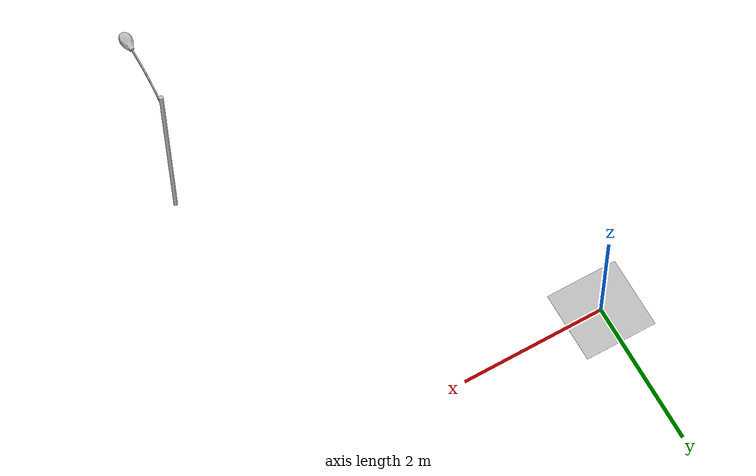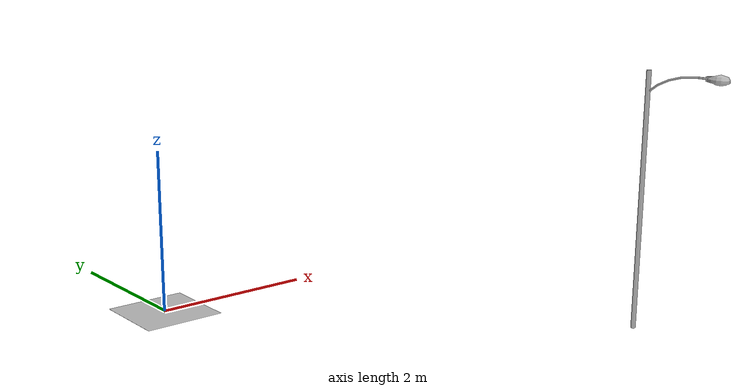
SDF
<?xml version="1.0" encoding="UTF-8" ?>
<sdf version="1.4" xmlns:xacro="http://www.ros.org/wiki/xacro">
  <world name="default">
    <scene>
      <ambient>0.5 0.5 0.5 1</ambient>
      <background>0.5 0.5 0.5 1</background>
      <shadows>false</shadows>
    </scene>
    <physics type="ode">
      <gravity>0 0 -9.81</gravity>
      <ode>
        <solver>
          <type>quick</type>
          <iters>10</iters>
          <sor>1.3</sor>
        </solver>
        <constraints>
          <cfm>0.0</cfm>
          <erp>0.2</erp>
          <contact_max_correcting_vel>10</contact_max_correcting_vel>
          <contact_surface_layer>0.001</contact_surface_layer>
        </constraints>
      </ode>
      <max_step_size>0.001</max_step_size>
    </physics>
    <light type="directional" name="directional_light_1">
      <pose>0 20 20 0.1 0.1 0</pose>
      <diffuse>1 1 1 1</diffuse>
      <specular>1 1 1 1</specular>
      <attenuation>
        <range>300</range>
      </attenuation>
      <direction>0.1 0.1 -1</direction>
      <cast_shadows>false</cast_shadows>
    </light>
    <light name='station_light' type='point'>
      <cast_shadows>1</cast_shadows>
      <pose>0 0 0 0 0 0</pose>
      <diffuse>0.8 0.8 0.8 1</diffuse>
      <specular>0.2 0.2 0.2 1</specular>
      <attenuation>
        <range>1000</range>
        <constant>0.9</constant>
        <linear>0.01</linear>
        <quadratic>0.001</quadratic>
      </attenuation>
      <direction>-0.5 0.1 -0.9</direction>
    </light>
    <model name="plane_model">
      <link name="plane_model_link">
        <collision name="plane_model_collision">
          <geometry>
            <plane>
              <normal>0 0 1</normal>
            </plane>
          </geometry>
          <surface>
            <friction>
              <ode>
                <mu>10.0</mu>
                <mu2>10.0</mu2>
                <fdir1>0 0 0</fdir1>
                <slip1>0</slip1>
                <slip2>0</slip2>
              </ode>
            </friction>
            <bounce>
              <restitution_coefficient>0</restitution_coefficient>
              <threshold>1000000.0</threshold>
            </bounce>
            <contact>
              <ode>
                <soft_cfm>0</soft_cfm>
                <soft_erp>0.2</soft_erp>
                <kp>1e10</kp>
                <kd>1</kd>
                <max_vel>100.0</max_vel>
                <min_depth>0.0001</min_depth>
              </ode>
            </contact>
          </surface>
        </collision>
        <visual name="plane_model_visual">
          <geometry>
            <plane>
              <normal>0 0 1</normal>
            </plane>
          </geometry>
          <material>
            <script>Gazebo/Grey</script>
          </material>
          <cast_shadows>false</cast_shadows>
        </visual>
      </link>
      <static>true</static>
    </model>
    <model name='Lamp Post'>
      <static>1</static>
      <link name='link'>
        <collision name='collision'>
          <geometry>
            <mesh>
              <uri>model://lamp_post/meshes/lamp_post.dae</uri>
            </mesh>
          </geometry>
          <max_contacts>10</max_contacts>
          <surface>
            <bounce/>
            <friction>
              <ode/>
            </friction>
            <contact>
              <ode/>
            </contact>
          </surface>
        </collision>
        <visual name='visual'>
          <geometry>
            <mesh>
              <uri>model://lamp_post/meshes/lamp_post.dae</uri>
            </mesh>
          </geometry>
        </visual>
        <velocity_decay>
          <linear>0</linear>
          <angular>0</angular>
        </velocity_decay>
        <self_collide>0</self_collide>
        <kinematic>0</kinematic>
        <gravity>1</gravity>
      </link>
      <pose>4 -4 0 0 -0 0</pose>
    </model>
  </world>
</sdf>
